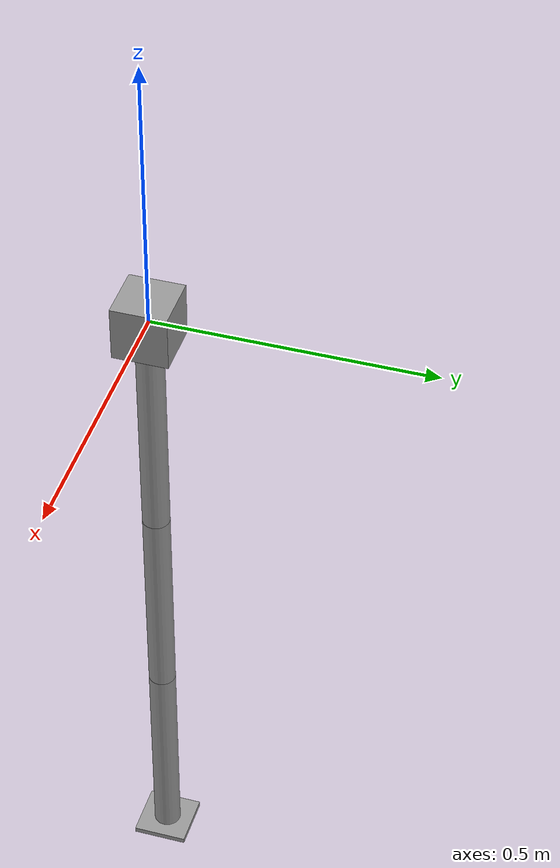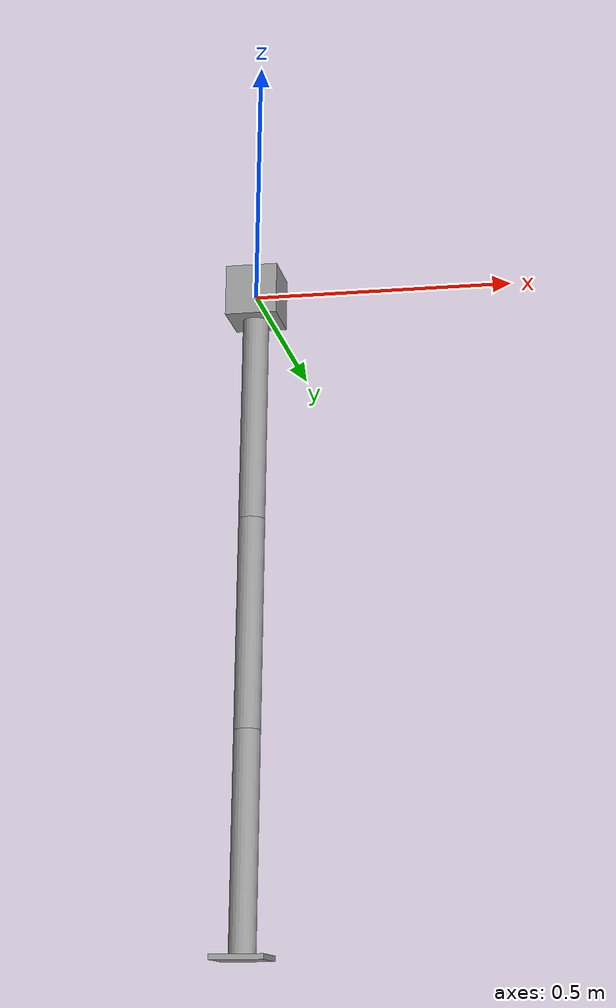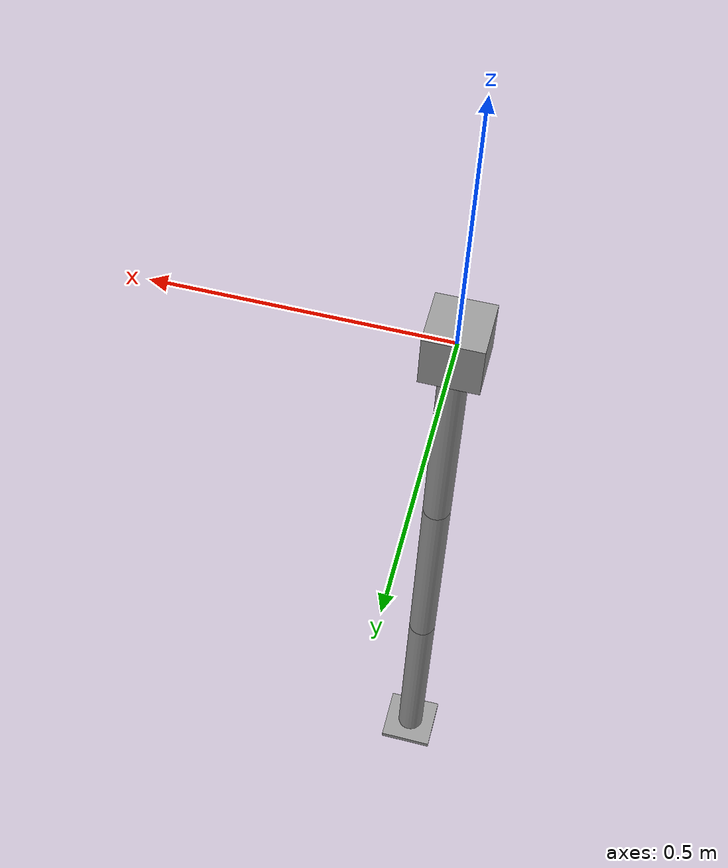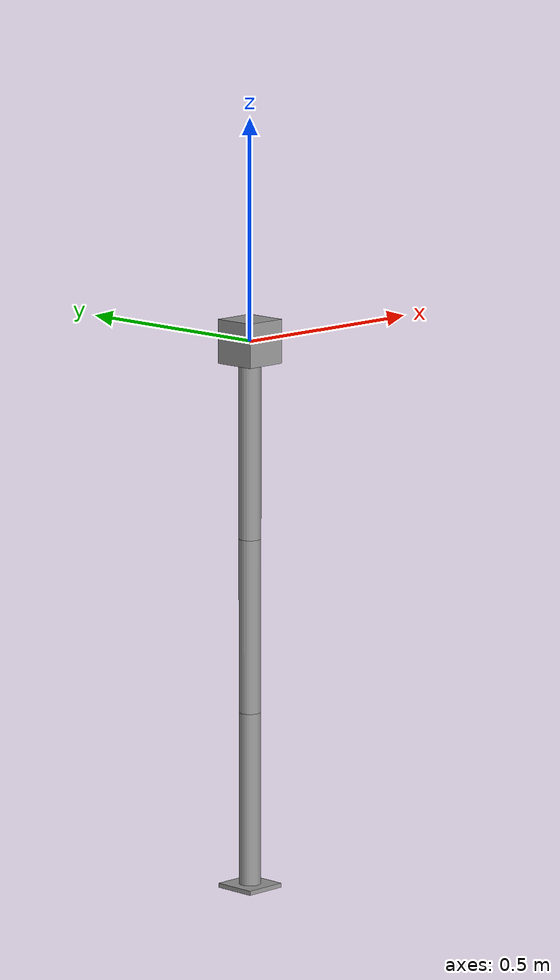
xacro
<?xml version="1.0"?>
<!-- Author: Peter Jochem
     Email: peterjochem2020@u.northwestern.edu
     Date: 09/29/2020   -->
<robot name="hopping_robot" xmlns:xacro="http://ros.org/wiki/xacro">

	<xacro:property name="torso_width" value="0.1" />
        <xacro:property name="torso_height" value="0.1" />
        <xacro:property name="torso_depth" value="0.1" />
        <xacro:property name="torso_mass" value="1.25" />

	<xacro:property name="link1_length" value="0.4" />
	<xacro:property name="link1_radius" value="0.025"/>
	<xacro:property name="link1_mass" value="0.05" />

	<xacro:property name="link2_length" value="0.4" />
        <xacro:property name="link2_radius" value="0.025"/>
        <xacro:property name="link2_mass" value="0.05" />

	<xacro:property name="link3_length" value="0.4" />
        <xacro:property name="link3_radius" value="0.025"/>
        <xacro:property name="link3_mass" value="0.05" />

	<xacro:property name="foot_width" value="0.1" />
        <xacro:property name="foot_height" value="0.1" />
        <xacro:property name="foot_depth" value="0.01" />
	<xacro:property name="foot_mass" value="0.25" />

	<link name="torso">
		<visual>
			<geometry>
				<box size="${torso_width} ${torso_height} ${torso_depth}" />
			</geometry>

			<material name="gray">
				<!-- color rgba="255 0 0 0.75" /-->
			</material>
			<origin rpy="0 0 0" xyz="0.0 0.0 0.0"/>
		</visual>

		<inertial>
      			<origin rpy="0 0 0" xyz="0.0 0.0 0.0"/>
			<mass value = "1.0"/>

			<!-- Fix the inertia tag-->
			<inertia ixx="${(1.0/12.0) * torso_mass * ( (torso_height * torso_height) + (torso_depth * torso_depth) ) }"
                                 iyy="${(1.0/12.0) * torso_mass * ( (torso_width * torso_width) + (torso_depth * torso_depth) ) }"
                                 izz="${(1.0/12.0) * torso_mass * ( (torso_width * torso_width) + (torso_height * torso_height) ) }"/>
    		</inertial>

		<collision>
      			<origin rpy="0 0 0" xyz="0.0 0.0 0.0"/>
    	  		<geometry>
        			<box size="${torso_width} ${torso_height} ${torso_depth}" />
     			</geometry>
		</collision>
        </link>

	<link name="link1">

		 <visual>
                        <geometry>
				 <cylinder length="${link1_length}" radius="${link1_radius}"/>
                        </geometry>

                        <material name="gray">
                                <!-- color rgba="0 255 0 0.4" / -->
                        </material>
			<origin rpy="0 0 0" xyz="0 0 0"/>
                </visual>

                <inertial>
			<origin rpy="0 0 0" xyz="0 0 0"/>
                        <mass value = "1.0"/>

			<inertia ixx="${ (1.0/12.0) * link1_mass * link1_length * link1_length}"
				 iyy="${ (1.0/12.0) * link1_mass * link1_length * link1_length}"
				 izz="${ (1.0/12.0) * link1_mass * link1_length * link1_length}" />
                </inertial>

                <collision>
			<origin rpy="0 0 0" xyz="0 0 0"/>
                        <geometry>
                        	<cylinder length="${link1_length}" radius="${link1_radius}"/>
                        </geometry>
                </collision>
	</link>

	 <link name="link2">

                 <visual>
                        <geometry>
                                 <cylinder length="${link2_length}" radius="${link2_radius}"/>
                        </geometry>

                        <material name="gray">
                                <!-- color rgba="233 0 255 0.4" / -->
                        </material>
			<origin rpy="0 0 0" xyz="0 0 ${-link2_length/2}"/>
                </visual>

                <inertial>
                        <origin rpy="0 0 0" xyz="0 0 ${-link2_length/2}"/>
                        <mass value = "1.0"/>

                        <inertia ixx="${ (1.0/12.0) * link2_mass * link2_length * link2_length}"
                                 iyy="${ (1.0/12.0) * link2_mass * link2_length * link2_length}"
                                 izz="${ (1.0/12.0) * link2_mass * link2_length * link2_length}" />
                </inertial>

                <collision>
                        <origin rpy="0 0 0" xyz="0 0 ${-link1_length/2}"/>
                        <geometry>
                                <cylinder length="${link2_length}" radius="${link2_radius}"/>
                        </geometry>
                </collision>
	</link>

	<link name="link3">

                 <visual>
                        <geometry>
                                 <cylinder length="${link3_length}" radius="${link3_radius}"/>
                        </geometry>

                        <material name="gray">
                                <!-- color rgba="0 0 255 0.4"/ -->
                        </material>
			<origin rpy="0 0 0" xyz="0 0 ${-link3_length/2}"/>
                </visual>

                <inertial>
			<origin rpy="0 0 0" xyz="0 0 ${-link3_length/2}"/>
                        <mass value = "1.0"/>

                        <inertia ixx="${ (1.0/12.0) * link3_mass * link3_length * link3_length}"
                                 iyy="${ (1.0/12.0) * link3_mass * link3_length * link3_length}"
                                 izz="${ (1.0/12.0) * link3_mass * link3_length * link3_length}" />
                </inertial>

                <collision>
			<origin rpy="0 0 0" xyz="0 0 ${-link2_length/2}"/>
                        <geometry>
                                <cylinder length="${link3_length}" radius="${link3_radius}"/>
                        </geometry>
                </collision>
        </link>

	<link name="foot">
		<visual>
                        <geometry>
				<box size="${foot_width} ${foot_height} ${foot_depth}" />
                        </geometry>

                        <material name="gray">
                                <!-- color rgba="0 255 0 0.5" / -->
                        </material>
			<origin rpy="0 0 0" xyz="0.0 0.0 0.0"/>
                </visual>

                <inertial>
			<origin rpy="0 0 0" xyz="0.0 0.0 0.0"/>
                        <mass value = "1.0"/>

                        <!-- Fix the inertia tag-->
                        <inertia ixx="${(1.0/12.0) * foot_mass * ( (foot_height * foot_height) + (foot_depth * foot_depth) ) }"
                                 iyy="${(1.0/12.0) * foot_mass * ( (foot_width * foot_width) + (foot_depth * foot_depth) ) }"
                                 izz="${(1.0/12.0) * foot_mass * ( (foot_width * foot_width) + (foot_height * foot_height) ) }"/>
                </inertial>

                <collision>
			<origin rpy="0 0 0" xyz="0.0 0.0 0.0"/>
                        <geometry>
                                <box size="${foot_width} ${foot_height} ${foot_depth}" />
                        </geometry>
                </collision>
        </link>

	<joint name="torso_leg" type="fixed">
		<parent link="torso"/>
                <child link="link1"/>
		<origin rpy="0 0 0" xyz="0.0 0.0 ${-link1_length/2 - torso_depth/2}"/>
		<axis xyz="0 0 0"/>

	</joint>

	<joint name="link1_link2" type="revolute">
                <origin xyz="0.0 0.0 ${-link1_length/2}" rpy="0 0 0" />
                <axis xyz = "1 0 0" />
                <parent link="link1" />
                <child link="link2" />

                <!-- What to set these to? -->
		<limit velocity="1.0" effort="10" lower="${-1.57/2.0}" upper="${1.57/2.0}"/>
	</joint>

	<joint name="link2_link3" type="revolute">
		<origin xyz="0.0 0.0 ${-link2_length}" rpy="0 0 0" />
                <axis xyz = "1 0 0" />
                <parent link="link2" />
                <child link="link3" />

                <!-- What to set these to? -->
		<limit velocity="1.0" effort="10" lower="${-1.57/2.0}" upper="${1.57/2.0}"/>
        </joint>

	<joint name="leg_foot" type="revolute">
		<origin xyz="0.0 0.0 ${-link3_length - foot_depth/2}" rpy="0 0 0" />
	  	<axis xyz = "1 0 0" />
	  	<parent link="link3" />
		<child link="foot" />

		<!-- What to set these to? -->
		<limit velocity="1.0" effort="10" lower="${-1.57/2.0}" upper="${1.57/2.0}"/>
  	</joint>

	 <transmission name="leg_foot_trans" type="transmission_interface/SimpleTransmission">
                <joint name="leg_foot_trans" />

                <actuator name="leg_foot_trans"/>

                <!-- What to set these to? -->
                <motorInertia>0.0000049</motorInertia>
                <mechanicalReduction>50</mechanicalReduction>
        </transmission>

	<transmission name="link1_link2_trans" type="transmission_interface/SimpleTransmission">
                <joint name="link1_link2_trans" />

                <actuator name="link1_link2_trans"/>

                <!-- What to set these to? -->
                <motorInertia>0.0000049</motorInertia>
                <mechanicalReduction>50</mechanicalReduction>
        </transmission>

	<transmission name="link2_link3_trans" type="transmission_interface/SimpleTransmission">
                <joint name="link2_link3_trans" />

                <actuator name="link2_link3_trans"/>

                <!-- What to set these to? -->
                <motorInertia>0.0000049</motorInertia>
                <mechanicalReduction>50</mechanicalReduction>
        </transmission>
</robot>
